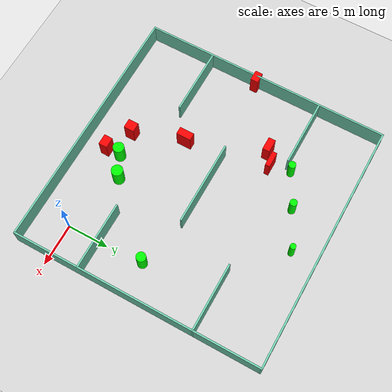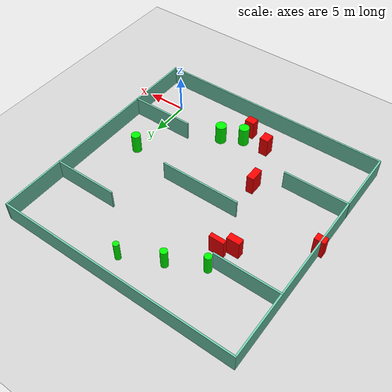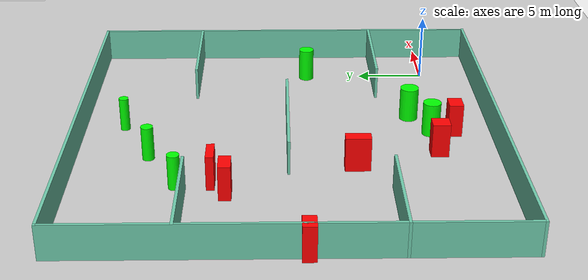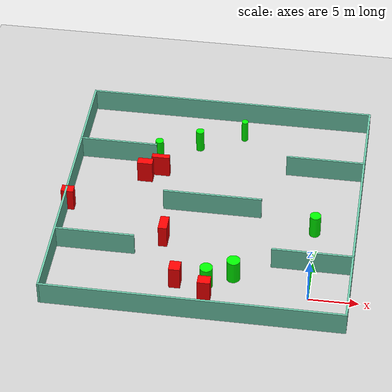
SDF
<sdf version="1.7">
 <world name="default">
  <light name="sun" type="directional">
   <pose>0 0 10 0 -0 0</pose>
   <diffuse>0.8 0.8 0.8 1</diffuse>
   <specular>0.2 0.2 0.2 1</specular>
   <attenuation>
    <range>1000</range>
    <constant>0.9</constant>
    <linear>0.01</linear>
    <quadratic>0.001</quadratic>
   </attenuation>
   <direction>-0.5 0.1 -0.9</direction>
   <spot><inner_angle>0</inner_angle><outer_angle>0</outer_angle><falloff>0</falloff></spot>
  </light>
  <model name="ground_plane">
   <static>1</static>
   <link name="link">
    <collision name="collision">
     <geometry><plane><normal>0 0 1</normal><size>100 100</size></plane></geometry>
     <surface>
      <contact><collide_bitmask>65535</collide_bitmask></contact>
      <friction><ode><mu>100</mu><mu2>50</mu2></ode></friction>
     </surface>
    </collision>
    <visual name="visual">
     <cast_shadows>0</cast_shadows>
     <geometry><plane><normal>0 0 1</normal><size>100 100</size></plane></geometry>
     <material>
      <script><uri>file://media/materials/scripts/gazebo.material</uri><name>Gazebo/Grey</name></script>
     </material>
    </visual>
   </link>
  </model>
  <gravity>0 0 -9.8</gravity>
  <magnetic_field>6e-06 2.3e-05 -4.2e-05</magnetic_field>
  <atmosphere type="adiabatic"/>
  <physics type="ode">
   <max_step_size>0.001</max_step_size>
   <real_time_factor>1</real_time_factor>
   <real_time_update_rate>1000</real_time_update_rate>
  </physics>
  <scene><ambient>0.4 0.4 0.4 1</ambient><background>0.7 0.7 0.7 1</background><shadows>1</shadows></scene>
  <spherical_coordinates>
   <surface_model>EARTH_WGS84</surface_model>
   <latitude_deg>0</latitude_deg>
   <longitude_deg>0</longitude_deg>
   <elevation>0</elevation>
   <heading_deg>0</heading_deg>
  </spherical_coordinates>
  <model name="my_base_walls">
   <link name="Wall_10">
    <collision name="Wall_10_Collision">
     <geometry><box><size>8.2 0.2 2.5</size></box></geometry>
     <pose>0 0 1.25 0 -0 0</pose>
    </collision>
    <visual name="Wall_10_Visual">
     <pose>0 0 1.25 0 -0 0</pose>
     <geometry><box><size>8.2 0.2 2.5</size></box></geometry>
     <material>
      <script><uri>file://media/materials/scripts/gazebo.material</uri><name>Gazebo/Grey</name></script>
      <ambient>0.435294 0.796078 0.67451 1</ambient>
     </material>
     <meta><layer>0</layer></meta>
    </visual>
    <pose>-11 -7 0 0 -0 0</pose>
   </link>
   <link name="Wall_12">
    <collision name="Wall_12_Collision">
     <geometry><box><size>8.2 0.2 2.5</size></box></geometry>
     <pose>0 0 1.25 0 -0 0</pose>
    </collision>
    <visual name="Wall_12_Visual">
     <pose>0 0 1.25 0 -0 0</pose>
     <geometry><box><size>8.2 0.2 2.5</size></box></geometry>
     <material>
      <script><uri>file://media/materials/scripts/gazebo.material</uri><name>Gazebo/Grey</name></script>
      <ambient>0.435294 0.796078 0.67451 1</ambient>
     </material>
     <meta><layer>0</layer></meta>
    </visual>
    <pose>-11 7 0 0 -0 0</pose>
   </link>
   <link name="Wall_14">
    <collision name="Wall_14_Collision">
     <geometry><box><size>8.2 0.2 2.5</size></box></geometry>
     <pose>0 0 1.25 0 -0 0</pose>
    </collision>
    <visual name="Wall_14_Visual">
     <pose>0 0 1.25 0 -0 0</pose>
     <geometry><box><size>8.2 0.2 2.5</size></box></geometry>
     <material>
      <script><uri>file://media/materials/scripts/gazebo.material</uri><name>Gazebo/Grey</name></script>
      <ambient>0.435294 0.796078 0.67451 1</ambient>
     </material>
     <meta><layer>0</layer></meta>
    </visual>
    <pose>11 7 0 0 -0 3.14159</pose>
   </link>
   <link name="Wall_16">
    <collision name="Wall_16_Collision">
     <geometry><box><size>10.2 0.2 2.5</size></box></geometry>
     <pose>0 0 1.25 0 -0 0</pose>
    </collision>
    <visual name="Wall_16_Visual">
     <pose>0 0 1.25 0 -0 0</pose>
     <geometry><box><size>10.2 0.2 2.5</size></box></geometry>
     <material>
      <script><uri>file://media/materials/scripts/gazebo.material</uri><name>Gazebo/Grey</name></script>
      <ambient>0.435294 0.796078 0.67451 1</ambient>
     </material>
     <meta><layer>0</layer></meta>
    </visual>
    <pose>0 0 0 0 -0 3.14159</pose>
   </link>
   <link name="Wall_2">
    <collision name="Wall_2_Collision">
     <geometry><box><size>30.2 0.2 2.5</size></box></geometry>
     <pose>0 0 1.25 0 -0 0</pose>
    </collision>
    <visual name="Wall_2_Visual">
     <pose>0 0 1.25 0 -0 0</pose>
     <geometry><box><size>30.2 0.2 2.5</size></box></geometry>
     <material>
      <script><uri>file://media/materials/scripts/gazebo.material</uri><name>Gazebo/Grey</name></script>
      <ambient>0.435294 0.796078 0.67451 1</ambient>
     </material>
     <meta><layer>0</layer></meta>
    </visual>
    <pose>0 -15 0 0 -0 3.14159</pose>
   </link>
   <link name="Wall_3">
    <collision name="Wall_3_Collision">
     <geometry><box><size>30.2 0.2 2.5</size></box></geometry>
     <pose>0 0 1.25 0 -0 0</pose>
    </collision>
    <visual name="Wall_3_Visual">
     <pose>0 0 1.25 0 -0 0</pose>
     <geometry><box><size>30.2 0.2 2.5</size></box></geometry>
     <material>
      <script><uri>file://media/materials/scripts/gazebo.material</uri><name>Gazebo/Grey</name></script>
      <ambient>0.435294 0.796078 0.67451 1</ambient>
     </material>
     <meta><layer>0</layer></meta>
    </visual>
    <pose>-15 0 0 0 -0 1.5708</pose>
   </link>
   <link name="Wall_4">
    <collision name="Wall_4_Collision">
     <geometry><box><size>30.2 0.2 2.5</size></box></geometry>
     <pose>0 0 1.25 0 -0 0</pose>
    </collision>
    <visual name="Wall_4_Visual">
     <pose>0 0 1.25 0 -0 0</pose>
     <geometry><box><size>30.2 0.2 2.5</size></box></geometry>
     <material>
      <script><uri>file://media/materials/scripts/gazebo.material</uri><name>Gazebo/Grey</name></script>
      <ambient>0.435294 0.796078 0.67451 1</ambient>
     </material>
     <meta><layer>0</layer></meta>
    </visual>
    <pose>0 15 0 0 -0 0</pose>
   </link>
   <link name="Wall_6">
    <collision name="Wall_6_Collision">
     <geometry><box><size>30.2 0.2 2.5</size></box></geometry>
     <pose>0 0 1.25 0 -0 0</pose>
    </collision>
    <visual name="Wall_6_Visual">
     <pose>0 0 1.25 0 -0 0</pose>
     <geometry><box><size>30.2 0.2 2.5</size></box></geometry>
     <material>
      <script><uri>file://media/materials/scripts/gazebo.material</uri><name>Gazebo/Grey</name></script>
      <ambient>0.435294 0.796078 0.67451 1</ambient>
     </material>
     <meta><layer>0</layer></meta>
    </visual>
    <pose>15 0 0 0 -0 1.5708</pose>
   </link>
   <link name="Wall_8">
    <collision name="Wall_8_Collision">
     <geometry><box><size>8.2 0.2 2.5</size></box></geometry>
     <pose>0 0 1.25 0 -0 0</pose>
    </collision>
    <visual name="Wall_8_Visual">
     <pose>0 0 1.25 0 -0 0</pose>
     <geometry><box><size>8.2 0.2 2.5</size></box></geometry>
     <material>
      <script><uri>file://media/materials/scripts/gazebo.material</uri><name>Gazebo/Grey</name></script>
      <ambient>0.435294 0.796078 0.67451 1</ambient>
     </material>
     <meta><layer>0</layer></meta>
    </visual>
    <pose>11 -7 0 0 -0 3.14159</pose>
   </link>
   <static>1</static>
   <pose>-11 11 0 0 -0 0</pose>
  </model>
  <model name="cylinder1">
   <static>1</static>
   <link name="link">
    <inertial>
     <mass>1</mass>
     <inertia><ixx>0.5</ixx><ixy>0</ixy><ixz>0</ixz><iyy>0.5</iyy><iyz>0</iyz><izz>1</izz></inertia>
    </inertial>
    <collision name="collision">
     <geometry><cylinder><radius>0.6850614423248527</radius><length>2.5</length></cylinder></geometry>
    </collision>
    <visual name="visual">
     <geometry><cylinder><radius>0.6850614423248527</radius><length>2.5</length></cylinder></geometry>
     <material>
      <ambient>0 1 0 1</ambient>
      <diffuse>0 1 0 1</diffuse>
      <specular>0.1 0.1 0.1 1</specular>
      <emissive>0 0 0 0</emissive>
     </material>
    </visual>
   </link>
   <pose>-7.610999349978229 1.8542738830486005 1.25 0 0 0</pose>
  </model>
  <model name="cylinder2">
   <static>1</static>
   <link name="link">
    <inertial>
     <mass>1</mass>
     <inertia><ixx>0.5</ixx><ixy>0</ixy><ixz>0</ixz><iyy>0.5</iyy><iyz>0</iyz><izz>1</izz></inertia>
    </inertial>
    <collision name="collision">
     <geometry><cylinder><radius>0.5700021981961612</radius><length>2.5</length></cylinder></geometry>
    </collision>
    <visual name="visual">
     <geometry><cylinder><radius>0.5700021981961612</radius><length>2.5</length></cylinder></geometry>
     <material>
      <ambient>0 1 0 1</ambient>
      <diffuse>0 1 0 1</diffuse>
      <specular>0.1 0.1 0.1 1</specular>
      <emissive>0 0 0 0</emissive>
     </material>
    </visual>
   </link>
   <pose>-0.23039864407335386 9.349901515377564 1.25 0 0 0</pose>
  </model>
  <model name="cylinder3">
   <static>1</static>
   <link name="link">
    <inertial>
     <mass>1</mass>
     <inertia><ixx>0.5</ixx><ixy>0</ixy><ixz>0</ixz><iyy>0.5</iyy><iyz>0</iyz><izz>1</izz></inertia>
    </inertial>
    <collision name="collision">
     <geometry><cylinder><radius>0.4319188125780594</radius><length>2.5</length></cylinder></geometry>
    </collision>
    <visual name="visual">
     <geometry><cylinder><radius>0.4319188125780594</radius><length>2.5</length></cylinder></geometry>
     <material>
      <ambient>0 1 0 1</ambient>
      <diffuse>0 1 0 1</diffuse>
      <specular>0.1 0.1 0.1 1</specular>
      <emissive>0 0 0 0</emissive>
     </material>
    </visual>
   </link>
   <pose>-13.683188009739105 20.806303294547057 1.25 0 0 0</pose>
  </model>
  <model name="cylinder4">
   <static>1</static>
   <link name="link">
    <inertial>
     <mass>1</mass>
     <inertia><ixx>0.5</ixx><ixy>0</ixy><ixz>0</ixz><iyy>0.5</iyy><iyz>0</iyz><izz>1</izz></inertia>
    </inertial>
    <collision name="collision">
     <geometry><cylinder><radius>0.6548074666881312</radius><length>2.5</length></cylinder></geometry>
    </collision>
    <visual name="visual">
     <geometry><cylinder><radius>0.6548074666881312</radius><length>2.5</length></cylinder></geometry>
     <material>
      <ambient>0 1 0 1</ambient>
      <diffuse>0 1 0 1</diffuse>
      <specular>0.1 0.1 0.1 1</specular>
      <emissive>0 0 0 0</emissive>
     </material>
    </visual>
   </link>
   <pose>-10.132254160612927 0.5038313519608586 1.25 0 0 0</pose>
  </model>
  <model name="cylinder5">
   <static>1</static>
   <link name="link">
    <inertial>
     <mass>1</mass>
     <inertia><ixx>0.5</ixx><ixy>0</ixy><ixz>0</ixz><iyy>0.5</iyy><iyz>0</iyz><izz>1</izz></inertia>
    </inertial>
    <collision name="collision">
     <geometry><cylinder><radius>0.43220505848095975</radius><length>2.5</length></cylinder></geometry>
    </collision>
    <visual name="visual">
     <geometry><cylinder><radius>0.43220505848095975</radius><length>2.5</length></cylinder></geometry>
     <material>
      <ambient>0 1 0 1</ambient>
      <diffuse>0 1 0 1</diffuse>
      <specular>0.1 0.1 0.1 1</specular>
      <emissive>0 0 0 0</emissive>
     </material>
    </visual>
   </link>
   <pose>-17.710864912862206 18.65350359244581 1.25 0 0 0</pose>
  </model>
  <model name="cylinder6">
   <static>1</static>
   <link name="link">
    <inertial>
     <mass>1</mass>
     <inertia><ixx>0.5</ixx><ixy>0</ixy><ixz>0</ixz><iyy>0.5</iyy><iyz>0</iyz><izz>1</izz></inertia>
    </inertial>
    <collision name="collision">
     <geometry><cylinder><radius>0.3494819307374967</radius><length>2.5</length></cylinder></geometry>
    </collision>
    <visual name="visual">
     <geometry><cylinder><radius>0.3494819307374967</radius><length>2.5</length></cylinder></geometry>
     <material>
      <ambient>0 1 0 1</ambient>
      <diffuse>0 1 0 1</diffuse>
      <specular>0.1 0.1 0.1 1</specular>
      <emissive>0 0 0 0</emissive>
     </material>
    </visual>
   </link>
   <pose>-9.140824769845198 22.993257833602122 1.25 0 0 0</pose>
  </model>
  <model name="box1">
   <static>1</static>
   <link name="link">
    <inertial>
     <mass>1</mass>
     <inertia><ixx>0.083</ixx><ixy>0</ixy><ixz>0</ixz><iyy>0.083</iyy><iyz>0</iyz><izz>0.083</izz></inertia>
    </inertial>
    <collision name="collision">
     <geometry><box><size>1.590404501986344 0.8538768417434492 2.5</size></box></geometry>
    </collision>
    <visual name="visual">
     <geometry><box><size>1.590404501986344 0.8538768417434492 2.5</size></box></geometry>
     <material>
      <ambient>1 0 0 1</ambient>
      <diffuse>1 0 0 1</diffuse>
      <specular>0.1 0.1 0.1 1</specular>
      <emissive>0 0 0 0</emissive>
     </material>
    </visual>
    <sensor name="my_contact" type="contact">
     <contact><collision>box_collision</collision><topic>__default_topic__</topic></contact>
    </sensor>
   </link>
   <pose>-18.680906753687605 15.23263278936874 1.25 0 0 0</pose>
  </model>
  <model name="box2">
   <static>1</static>
   <link name="link">
    <inertial>
     <mass>1</mass>
     <inertia><ixx>0.083</ixx><ixy>0</ixy><ixz>0</ixz><iyy>0.083</iyy><iyz>0</iyz><izz>0.083</izz></inertia>
    </inertial>
    <collision name="collision">
     <geometry><box><size>0.8976365000951756 1.7850945317517324 2.5</size></box></geometry>
    </collision>
    <visual name="visual">
     <geometry><box><size>0.8976365000951756 1.7850945317517324 2.5</size></box></geometry>
     <material>
      <ambient>1 0 0 1</ambient>
      <diffuse>1 0 0 1</diffuse>
      <specular>0.1 0.1 0.1 1</specular>
      <emissive>0 0 0 0</emissive>
     </material>
    </visual>
    <sensor name="my_contact" type="contact">
     <contact><collision>box_collision</collision><topic>__default_topic__</topic></contact>
    </sensor>
   </link>
   <pose>-15.280732579661489 6.2543606821674995 1.25 0 0 0</pose>
  </model>
  <model name="box3">
   <static>1</static>
   <link name="link">
    <inertial>
     <mass>1</mass>
     <inertia><ixx>0.083</ixx><ixy>0</ixy><ixz>0</ixz><iyy>0.083</iyy><iyz>0</iyz><izz>0.083</izz></inertia>
    </inertial>
    <collision name="collision">
     <geometry><box><size>1.2771914279828342 1.0357407592851546 2.5</size></box></geometry>
    </collision>
    <visual name="visual">
     <geometry><box><size>1.2771914279828342 1.0357407592851546 2.5</size></box></geometry>
     <material>
      <ambient>1 0 0 1</ambient>
      <diffuse>1 0 0 1</diffuse>
      <specular>0.1 0.1 0.1 1</specular>
      <emissive>0 0 0 0</emissive>
     </material>
    </visual>
    <sensor name="my_contact" type="contact">
     <contact><collision>box_collision</collision><topic>__default_topic__</topic></contact>
    </sensor>
   </link>
   <pose>-10.099077818128862 -1.1875294693861025 1.25 0 0 0</pose>
  </model>
  <model name="box4">
   <static>1</static>
   <link name="link">
    <inertial>
     <mass>1</mass>
     <inertia><ixx>0.083</ixx><ixy>0</ixy><ixz>0</ixz><iyy>0.083</iyy><iyz>0</iyz><izz>0.083</izz></inertia>
    </inertial>
    <collision name="collision">
     <geometry><box><size>1.2819300273578844 0.9113255005572628 2.5</size></box></geometry>
    </collision>
    <visual name="visual">
     <geometry><box><size>1.2819300273578844 0.9113255005572628 2.5</size></box></geometry>
     <material>
      <ambient>1 0 0 1</ambient>
      <diffuse>1 0 0 1</diffuse>
      <specular>0.1 0.1 0.1 1</specular>
      <emissive>0 0 0 0</emissive>
     </material>
    </visual>
    <sensor name="my_contact" type="contact">
     <contact><collision>box_collision</collision><topic>__default_topic__</topic></contact>
    </sensor>
   </link>
   <pose>-25.865496452231557 9.909329340241761 1.25 0 0 0</pose>
  </model>
  <model name="box5">
   <static>1</static>
   <link name="link">
    <inertial>
     <mass>1</mass>
     <inertia><ixx>0.083</ixx><ixy>0</ixy><ixz>0</ixz><iyy>0.083</iyy><iyz>0</iyz><izz>0.083</izz></inertia>
    </inertial>
    <collision name="collision">
     <geometry><box><size>1.8725097220660019 0.55906818007567 2.5</size></box></geometry>
    </collision>
    <visual name="visual">
     <geometry><box><size>1.8725097220660019 0.55906818007567 2.5</size></box></geometry>
     <material>
      <ambient>1 0 0 1</ambient>
      <diffuse>1 0 0 1</diffuse>
      <specular>0.1 0.1 0.1 1</specular>
      <emissive>0 0 0 0</emissive>
     </material>
    </visual>
    <sensor name="my_contact" type="contact">
     <contact><collision>box_collision</collision><topic>__default_topic__</topic></contact>
    </sensor>
   </link>
   <pose>-17.18907807831072 16.248388517126244 1.25 0 0 0</pose>
  </model>
  <model name="box6">
   <static>1</static>
   <link name="link">
    <inertial>
     <mass>1</mass>
     <inertia><ixx>0.083</ixx><ixy>0</ixy><ixz>0</ixz><iyy>0.083</iyy><iyz>0</iyz><izz>0.083</izz></inertia>
    </inertial>
    <collision name="collision">
     <geometry><box><size>1.134185758037071 1.2473215109636624 2.5</size></box></geometry>
    </collision>
    <visual name="visual">
     <geometry><box><size>1.134185758037071 1.2473215109636624 2.5</size></box></geometry>
     <material>
      <ambient>1 0 0 1</ambient>
      <diffuse>1 0 0 1</diffuse>
      <specular>0.1 0.1 0.1 1</specular>
      <emissive>0 0 0 0</emissive>
     </material>
    </visual>
    <sensor name="my_contact" type="contact">
     <contact><collision>box_collision</collision><topic>__default_topic__</topic></contact>
    </sensor>
   </link>
   <pose>-13.214400652666997 0.32550609122430885 1.25 0 0 0</pose>
  </model>
 </world>
</sdf>
